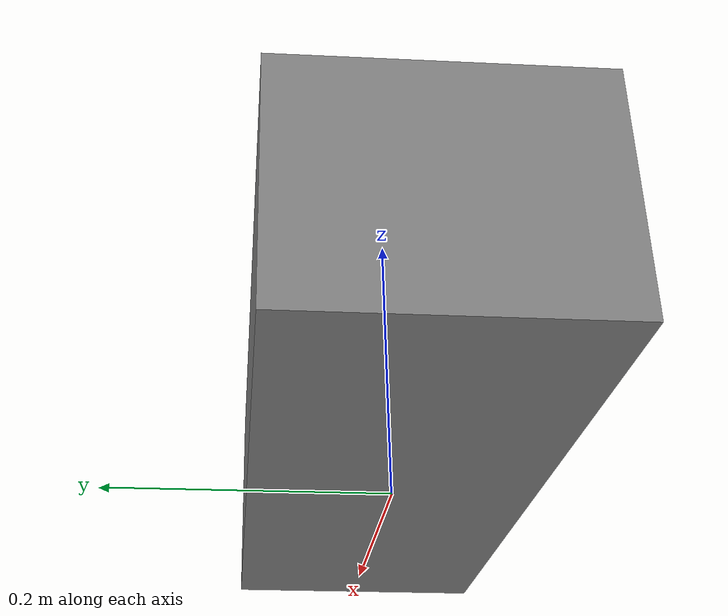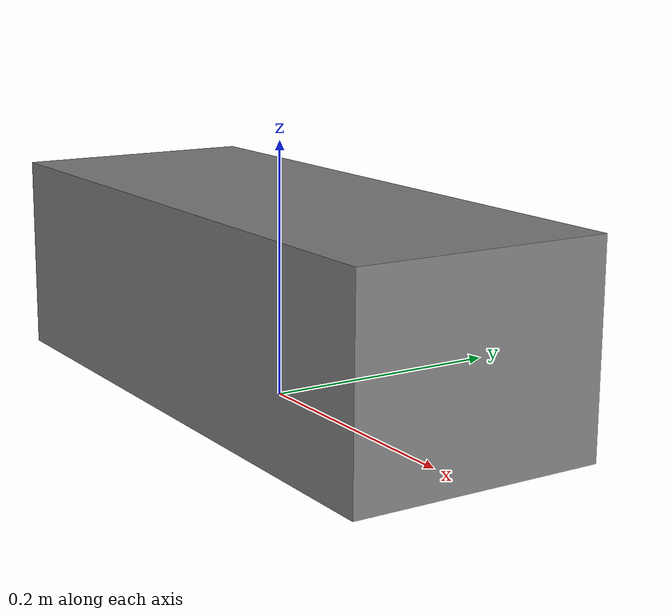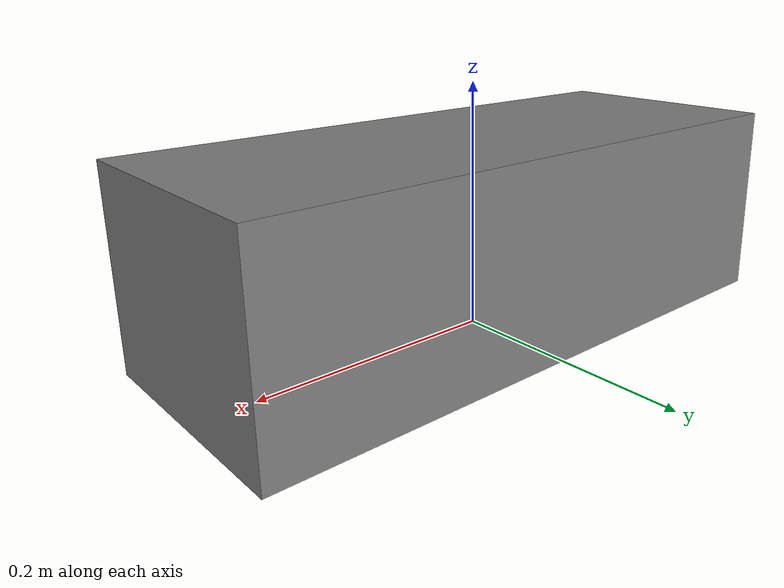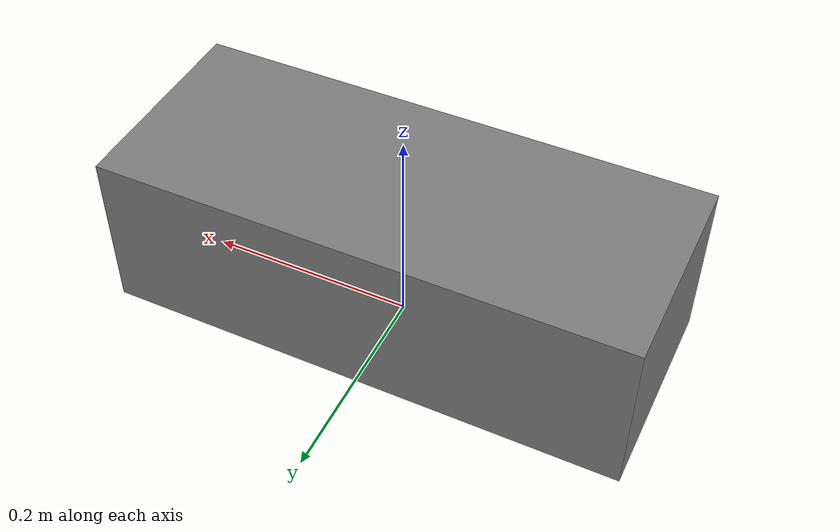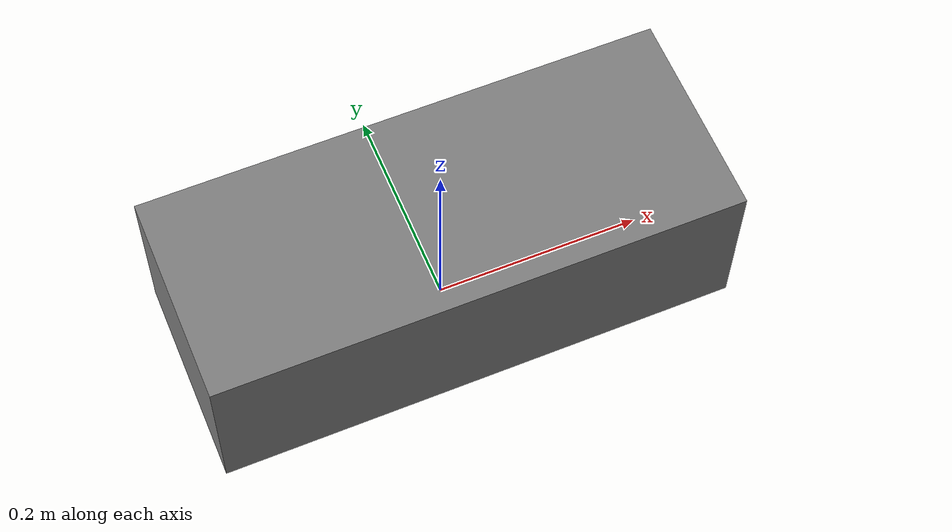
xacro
<robot name="example_robot">

  <link name="base_link">
    <visual>
      <origin xyz="0 0 0.08"/>
      <geometry>
        <box size="0.5 0.2 0.16"/>
      </geometry>
      <material name="grey">
        <color rgba="0.5 0.5 0.5 1"/>
      </material>
    </visual>
    <collision>
      <origin xyz="0 0 0.08"/>
      <geometry>
        <box size="0.5 0.2 0.16"/>
      </geometry>
    </collision>
    <inertial>
      <mass value="5.0"/>
      <origin xyz="0 0 0.08" rpy="0 0 0"/>
      <inertia ixx="0.1" ixy="0" ixz="0" iyy="0.1" iyz="0" izz="0.1"/>
    </inertial>
  </link>

</robot>
